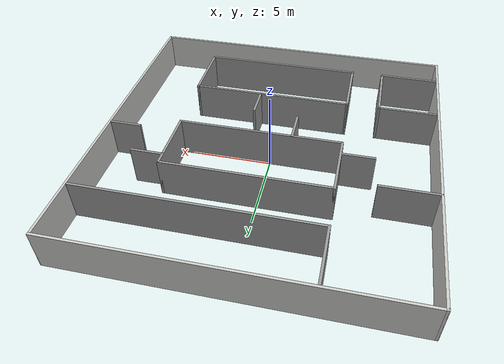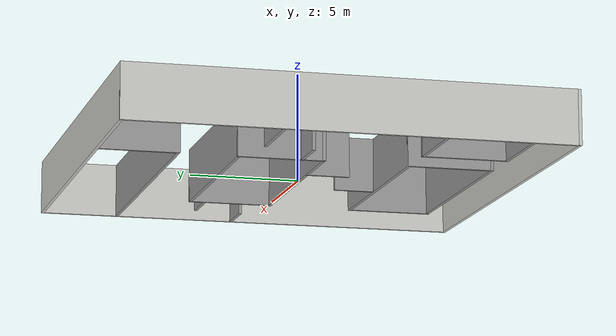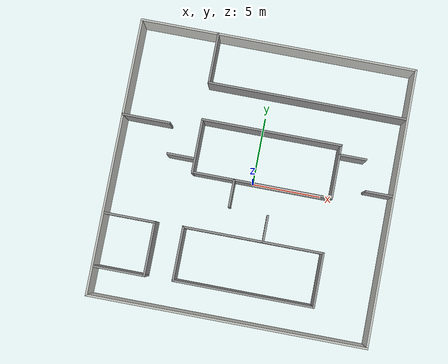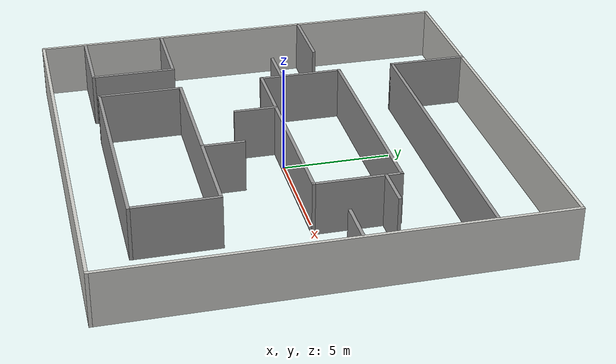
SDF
<?xml version='1.0'?>
<sdf version='1.7'>
  <model name='maze'>
    <pose>-0.013464 0.043743 0 0 -0 0</pose>
    <link name='Wall_17'>
      <collision name='Wall_17_Collision'>
        <geometry>
          <box>
            <size>20.25 0.15 2.5</size>
          </box>
        </geometry>
        <pose>0 0 1.25 0 -0 0</pose>
      </collision>
      <visual name='Wall_17_Visual'>
        <pose>0 0 1.25 0 -0 0</pose>
        <geometry>
          <box>
            <size>20.25 0.15 2.5</size>
          </box>
        </geometry>
        <material>
          <script>
            <uri>file://media/materials/scripts/gazebo.material</uri>
            <name>Gazebo/CeilingTiled</name>
          </script>
          <ambient>1 1 1 1</ambient>
        </material>
        <meta>
          <layer>0</layer>
        </meta>
      </visual>
      <pose>-10.05 0 0 0 -0 1.5708</pose>
    </link>
    <link name='Wall_18'>
      <collision name='Wall_18_Collision'>
        <geometry>
          <box>
            <size>20.25 0.15 2.5</size>
          </box>
        </geometry>
        <pose>0 0 1.25 0 -0 0</pose>
      </collision>
      <visual name='Wall_18_Visual'>
        <pose>0 0 1.25 0 -0 0</pose>
        <geometry>
          <box>
            <size>20.25 0.15 2.5</size>
          </box>
        </geometry>
        <material>
          <script>
            <uri>file://media/materials/scripts/gazebo.material</uri>
            <name>Gazebo/CeilingTiled</name>
          </script>
          <ambient>1 1 1 1</ambient>
        </material>
        <meta>
          <layer>0</layer>
        </meta>
      </visual>
      <pose>-0 10.05 0 0 -0 0</pose>
    </link>
    <link name='Wall_19'>
      <collision name='Wall_19_Collision'>
        <geometry>
          <box>
            <size>20.25 0.15 2.5</size>
          </box>
        </geometry>
        <pose>0 0 1.25 0 -0 0</pose>
      </collision>
      <visual name='Wall_19_Visual'>
        <pose>0 0 1.25 0 -0 0</pose>
        <geometry>
          <box>
            <size>20.25 0.15 2.5</size>
          </box>
        </geometry>
        <material>
          <script>
            <uri>file://media/materials/scripts/gazebo.material</uri>
            <name>Gazebo/CeilingTiled</name>
          </script>
          <ambient>1 1 1 1</ambient>
        </material>
        <meta>
          <layer>0</layer>
        </meta>
      </visual>
      <pose>10.05 0 0 0 -0 -1.5708</pose>
    </link>
    <link name='Wall_20'>
      <collision name='Wall_20_Collision'>
        <geometry>
          <box>
            <size>20.25 0.15 2.5</size>
          </box>
        </geometry>
        <pose>0 0 1.25 0 -0 0</pose>
      </collision>
      <visual name='Wall_20_Visual'>
        <pose>0 0 1.25 0 -0 0</pose>
        <geometry>
          <box>
            <size>20.25 0.15 2.5</size>
          </box>
        </geometry>
        <material>
          <script>
            <uri>file://media/materials/scripts/gazebo.material</uri>
            <name>Gazebo/CeilingTiled</name>
          </script>
          <ambient>1 1 1 1</ambient>
        </material>
        <meta>
          <layer>0</layer>
        </meta>
      </visual>
      <pose>-0 -10.05 0 0 -0 3.14159</pose>
    </link>
    <link name='Wall_23'>
      <collision name='Wall_23_Collision'>
        <geometry>
          <box>
            <size>3.75 0.15 2.5</size>
          </box>
        </geometry>
        <pose>0 0 1.25 0 -0 0</pose>
      </collision>
      <visual name='Wall_23_Visual'>
        <pose>0 0 1.25 0 -0 0</pose>
        <geometry>
          <box>
            <size>3.75 0.15 2.5</size>
          </box>
        </geometry>
        <material>
          <script>
            <uri>file://media/materials/scripts/gazebo.material</uri>
            <name>Gazebo/Grey</name>
          </script>
          <ambient>1 1 1 1</ambient>
        </material>
        <meta>
          <layer>0</layer>
        </meta>
      </visual>
      <pose>-4.4246 8.24301 0 0 -0 -1.5708</pose>
    </link>
    <link name='Wall_24'>
      <collision name='Wall_24_Collision'>
        <geometry>
          <box>
            <size>14.5 0.15 2.5</size>
          </box>
        </geometry>
        <pose>0 0 1.25 0 -0 0</pose>
      </collision>
      <visual name='Wall_24_Visual'>
        <pose>0 0 1.25 0 -0 0</pose>
        <geometry>
          <box>
            <size>14.5 0.15 2.5</size>
          </box>
        </geometry>
        <material>
          <script>
            <uri>file://media/materials/scripts/gazebo.material</uri>
            <name>Gazebo/Grey</name>
          </script>
          <ambient>1 1 1 1</ambient>
        </material>
        <meta>
          <layer>0</layer>
        </meta>
      </visual>
      <pose>2.7504 6.44301 0 0 -0 0</pose>
    </link>
    <link name='Wall_26'>
      <collision name='Wall_26_Collision'>
        <geometry>
          <box>
            <size>10.25 0.15 2.5</size>
          </box>
        </geometry>
        <pose>0 0 1.25 0 -0 0</pose>
      </collision>
      <visual name='Wall_26_Visual'>
        <pose>0 0 1.25 0 -0 0</pose>
        <geometry>
          <box>
            <size>10.25 0.15 2.5</size>
          </box>
        </geometry>
        <material>
          <script>
            <uri>file://media/materials/scripts/gazebo.material</uri>
            <name>Gazebo/Grey</name>
          </script>
          <ambient>1 1 1 1</ambient>
        </material>
        <meta>
          <layer>0</layer>
        </meta>
      </visual>
      <pose>0.6789 3.72971 0 0 -0 0</pose>
    </link>
    <link name='Wall_27'>
      <collision name='Wall_27_Collision'>
        <geometry>
          <box>
            <size>4 0.15 2.5</size>
          </box>
        </geometry>
        <pose>0 0 1.25 0 -0 0</pose>
      </collision>
      <visual name='Wall_27_Visual'>
        <pose>0 0 1.25 0 -0 0</pose>
        <geometry>
          <box>
            <size>4 0.15 2.5</size>
          </box>
        </geometry>
        <material>
          <script>
            <uri>file://media/materials/scripts/gazebo.material</uri>
            <name>Gazebo/Grey</name>
          </script>
          <ambient>1 1 1 1</ambient>
        </material>
        <meta>
          <layer>0</layer>
        </meta>
      </visual>
      <pose>5.7289 1.80471 0 0 -0 -1.5708</pose>
    </link>
    <link name='Wall_28'>
      <collision name='Wall_28_Collision'>
        <geometry>
          <box>
            <size>10.25 0.15 2.5</size>
          </box>
        </geometry>
        <pose>0 0 1.25 0 -0 0</pose>
      </collision>
      <visual name='Wall_28_Visual'>
        <pose>0 0 1.25 0 -0 0</pose>
        <geometry>
          <box>
            <size>10.25 0.15 2.5</size>
          </box>
        </geometry>
        <material>
          <script>
            <uri>file://media/materials/scripts/gazebo.material</uri>
            <name>Gazebo/Grey</name>
          </script>
          <ambient>1 1 1 1</ambient>
        </material>
        <meta>
          <layer>0</layer>
        </meta>
      </visual>
      <pose>0.6789 -0.120286 0 0 -0 3.14159</pose>
    </link>
    <link name='Wall_29'>
      <collision name='Wall_29_Collision'>
        <geometry>
          <box>
            <size>4 0.15 2.5</size>
          </box>
        </geometry>
        <pose>0 0 1.25 0 -0 0</pose>
      </collision>
      <visual name='Wall_29_Visual'>
        <pose>0 0 1.25 0 -0 0</pose>
        <geometry>
          <box>
            <size>4 0.15 2.5</size>
          </box>
        </geometry>
        <material>
          <script>
            <uri>file://media/materials/scripts/gazebo.material</uri>
            <name>Gazebo/Grey</name>
          </script>
          <ambient>1 1 1 1</ambient>
        </material>
        <meta>
          <layer>0</layer>
        </meta>
      </visual>
      <pose>-4.3711 1.80471 0 0 -0 1.5708</pose>
    </link>
    <link name='Wall_31'>
      <collision name='Wall_31_Collision'>
        <geometry>
          <box>
            <size>10.25 0.15 2.5</size>
          </box>
        </geometry>
        <pose>0 0 1.25 0 -0 0</pose>
      </collision>
      <visual name='Wall_31_Visual'>
        <pose>0 0 1.25 0 -0 0</pose>
        <geometry>
          <box>
            <size>10.25 0.15 2.5</size>
          </box>
        </geometry>
        <material>
          <script>
            <uri>file://media/materials/scripts/gazebo.material</uri>
            <name>Gazebo/Grey</name>
          </script>
          <ambient>1 1 1 1</ambient>
        </material>
        <meta>
          <layer>0</layer>
        </meta>
      </visual>
      <pose>0.80605 -4.07359 0 0 -0 0</pose>
    </link>
    <link name='Wall_32'>
      <collision name='Wall_32_Collision'>
        <geometry>
          <box>
            <size>4 0.15 2.5</size>
          </box>
        </geometry>
        <pose>0 0 1.25 0 -0 0</pose>
      </collision>
      <visual name='Wall_32_Visual'>
        <pose>0 0 1.25 0 -0 0</pose>
        <geometry>
          <box>
            <size>4 0.15 2.5</size>
          </box>
        </geometry>
        <material>
          <script>
            <uri>file://media/materials/scripts/gazebo.material</uri>
            <name>Gazebo/Grey</name>
          </script>
          <ambient>1 1 1 1</ambient>
        </material>
        <meta>
          <layer>0</layer>
        </meta>
      </visual>
      <pose>5.85605 -5.99859 0 0 -0 -1.5708</pose>
    </link>
    <link name='Wall_33'>
      <collision name='Wall_33_Collision'>
        <geometry>
          <box>
            <size>10.25 0.15 2.5</size>
          </box>
        </geometry>
        <pose>0 0 1.25 0 -0 0</pose>
      </collision>
      <visual name='Wall_33_Visual'>
        <pose>0 0 1.25 0 -0 0</pose>
        <geometry>
          <box>
            <size>10.25 0.15 2.5</size>
          </box>
        </geometry>
        <material>
          <script>
            <uri>file://media/materials/scripts/gazebo.material</uri>
            <name>Gazebo/Grey</name>
          </script>
          <ambient>1 1 1 1</ambient>
        </material>
        <meta>
          <layer>0</layer>
        </meta>
      </visual>
      <pose>0.80605 -7.92359 0 0 -0 3.14159</pose>
    </link>
    <link name='Wall_34'>
      <collision name='Wall_34_Collision'>
        <geometry>
          <box>
            <size>4 0.15 2.5</size>
          </box>
        </geometry>
        <pose>0 0 1.25 0 -0 0</pose>
      </collision>
      <visual name='Wall_34_Visual'>
        <pose>0 0 1.25 0 -0 0</pose>
        <geometry>
          <box>
            <size>4 0.15 2.5</size>
          </box>
        </geometry>
        <material>
          <script>
            <uri>file://media/materials/scripts/gazebo.material</uri>
            <name>Gazebo/Grey</name>
          </script>
          <ambient>1 1 1 1</ambient>
        </material>
        <meta>
          <layer>0</layer>
        </meta>
      </visual>
      <pose>-4.24395 -5.99859 0 0 -0 1.5708</pose>
    </link>
    <link name='Wall_36'>
      <collision name='Wall_36_Collision'>
        <geometry>
          <box>
            <size>3.5 0.15 2.5</size>
          </box>
        </geometry>
        <pose>0 0 1.25 0 -0 0</pose>
      </collision>
      <visual name='Wall_36_Visual'>
        <pose>0 0 1.25 0 -0 0</pose>
        <geometry>
          <box>
            <size>3.5 0.15 2.5</size>
          </box>
        </geometry>
        <material>
          <script>
            <uri>file://media/materials/scripts/gazebo.material</uri>
            <name>Gazebo/Grey</name>
          </script>
          <ambient>1 1 1 1</ambient>
        </material>
        <meta>
          <layer>0</layer>
        </meta>
      </visual>
      <pose>-8.35592 3.04645 0 0 -0 0</pose>
    </link>
    <link name='Wall_38'>
      <collision name='Wall_38_Collision'>
        <geometry>
          <box>
            <size>2 0.15 2.5</size>
          </box>
        </geometry>
        <pose>0 0 1.25 0 -0 0</pose>
      </collision>
      <visual name='Wall_38_Visual'>
        <pose>0 0 1.25 0 -0 0</pose>
        <geometry>
          <box>
            <size>2 0.15 2.5</size>
          </box>
        </geometry>
        <material>
          <script>
            <uri>file://media/materials/scripts/gazebo.material</uri>
            <name>Gazebo/Grey</name>
          </script>
          <ambient>1 1 1 1</ambient>
        </material>
        <meta>
          <layer>0</layer>
        </meta>
      </visual>
      <pose>-5.41958 0.85983 0 0 -0 3.14159</pose>
    </link>
    <link name='Wall_40'>
      <collision name='Wall_40_Collision'>
        <geometry>
          <box>
            <size>2 0.15 2.5</size>
          </box>
        </geometry>
        <pose>0 0 1.25 0 -0 0</pose>
      </collision>
      <visual name='Wall_40_Visual'>
        <pose>0 0 1.25 0 -0 0</pose>
        <geometry>
          <box>
            <size>2 0.15 2.5</size>
          </box>
        </geometry>
        <material>
          <script>
            <uri>file://media/materials/scripts/gazebo.material</uri>
            <name>Gazebo/Grey</name>
          </script>
          <ambient>1 1 1 1</ambient>
        </material>
        <meta>
          <layer>0</layer>
        </meta>
      </visual>
      <pose>-1.33095 -1.0887 0 0 -0 -1.5708</pose>
    </link>
    <link name='Wall_42'>
      <collision name='Wall_42_Collision'>
        <geometry>
          <box>
            <size>2 0.15 2.5</size>
          </box>
        </geometry>
        <pose>0 0 1.25 0 -0 0</pose>
      </collision>
      <visual name='Wall_42_Visual'>
        <pose>0 0 1.25 0 -0 0</pose>
        <geometry>
          <box>
            <size>2 0.15 2.5</size>
          </box>
        </geometry>
        <material>
          <script>
            <uri>file://media/materials/scripts/gazebo.material</uri>
            <name>Gazebo/Grey</name>
          </script>
          <ambient>1 1 1 1</ambient>
        </material>
        <meta>
          <layer>0</layer>
        </meta>
      </visual>
      <pose>1.50701 -3.1467 0 0 -0 1.5708</pose>
    </link>
    <link name='Wall_45'>
      <collision name='Wall_45_Collision'>
        <geometry>
          <box>
            <size>2 0.15 2.5</size>
          </box>
        </geometry>
        <pose>0 0 1.25 0 -0 0</pose>
      </collision>
      <visual name='Wall_45_Visual'>
        <pose>0 0 1.25 0 -0 0</pose>
        <geometry>
          <box>
            <size>2 0.15 2.5</size>
          </box>
        </geometry>
        <material>
          <script>
            <uri>file://media/materials/scripts/gazebo.material</uri>
            <name>Gazebo/Grey</name>
          </script>
          <ambient>1 1 1 1</ambient>
        </material>
        <meta>
          <layer>0</layer>
        </meta>
      </visual>
      <pose>6.71221 3.04645 0 0 -0 0</pose>
    </link>
    <link name='Wall_47'>
      <collision name='Wall_47_Collision'>
        <geometry>
          <box>
            <size>2 0.15 2.5</size>
          </box>
        </geometry>
        <pose>0 0 1.25 0 -0 0</pose>
      </collision>
      <visual name='Wall_47_Visual'>
        <pose>0 0 1.25 0 -0 0</pose>
        <geometry>
          <box>
            <size>2 0.15 2.5</size>
          </box>
        </geometry>
        <material>
          <script>
            <uri>file://media/materials/scripts/gazebo.material</uri>
            <name>Gazebo/Grey</name>
          </script>
          <ambient>1 1 1 1</ambient>
        </material>
        <meta>
          <layer>0</layer>
        </meta>
      </visual>
      <pose>9.00284 0.813306 0 0 -0 3.14159</pose>
    </link>
    <link name='Wall_50'>
      <collision name='Wall_50_Collision'>
        <geometry>
          <box>
            <size>4 0.15 2.5</size>
          </box>
        </geometry>
        <pose>0 0 1.25 0 -0 0</pose>
      </collision>
      <visual name='Wall_50_Visual'>
        <pose>0 0 1.25 0 -0 0</pose>
        <geometry>
          <box>
            <size>4 0.15 2.5</size>
          </box>
        </geometry>
        <material>
          <script>
            <uri>file://media/materials/scripts/gazebo.material</uri>
            <name>Gazebo/Grey</name>
          </script>
          <ambient>1 1 1 1</ambient>
        </material>
        <meta>
          <layer>0</layer>
        </meta>
      </visual>
      <pose>-6.30877 -6.04505 0 0 -0 -1.5708</pose>
    </link>
    <link name='Wall_51'>
      <collision name='Wall_51_Collision'>
        <geometry>
          <box>
            <size>3.75 0.15 2.5</size>
          </box>
        </geometry>
        <pose>0 0 1.25 0 -0 0</pose>
      </collision>
      <visual name='Wall_51_Visual'>
        <pose>0 0 1.25 0 -0 0</pose>
        <geometry>
          <box>
            <size>3.75 0.15 2.5</size>
          </box>
        </geometry>
        <material>
          <script>
            <uri>file://media/materials/scripts/gazebo.material</uri>
            <name>Gazebo/Grey</name>
          </script>
          <ambient>1 1 1 1</ambient>
        </material>
        <meta>
          <layer>0</layer>
        </meta>
      </visual>
      <pose>-8.10877 -7.97005 0 0 -0 3.14159</pose>
    </link>
    <link name='Wall_53'>
      <collision name='Wall_53_Collision'>
        <geometry>
          <box>
            <size>3.75 0.15 2.5</size>
          </box>
        </geometry>
        <pose>0 0 1.25 0 -0 0</pose>
      </collision>
      <visual name='Wall_53_Visual'>
        <pose>0 0 1.25 0 -0 0</pose>
        <geometry>
          <box>
            <size>3.75 0.15 2.5</size>
          </box>
        </geometry>
        <material>
          <script>
            <uri>file://media/materials/scripts/gazebo.material</uri>
            <name>Gazebo/Grey</name>
          </script>
          <ambient>1 1 1 1</ambient>
        </material>
        <meta>
          <layer>0</layer>
        </meta>
      </visual>
      <pose>-8.10877 -4.12005 0 0 -0 3.14159</pose>
    </link>
    <static>1</static>
  </model>
</sdf>
